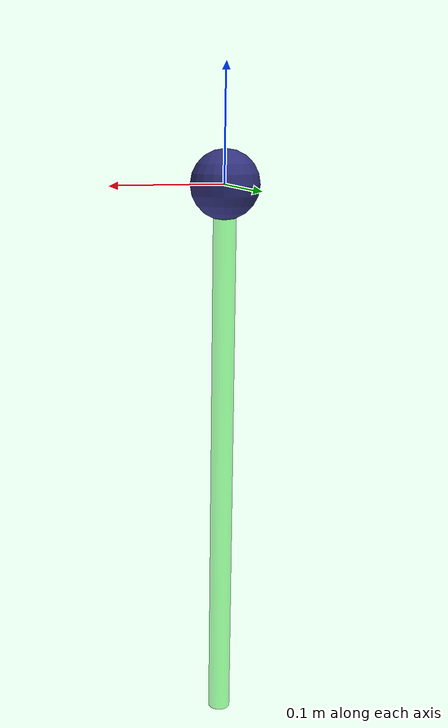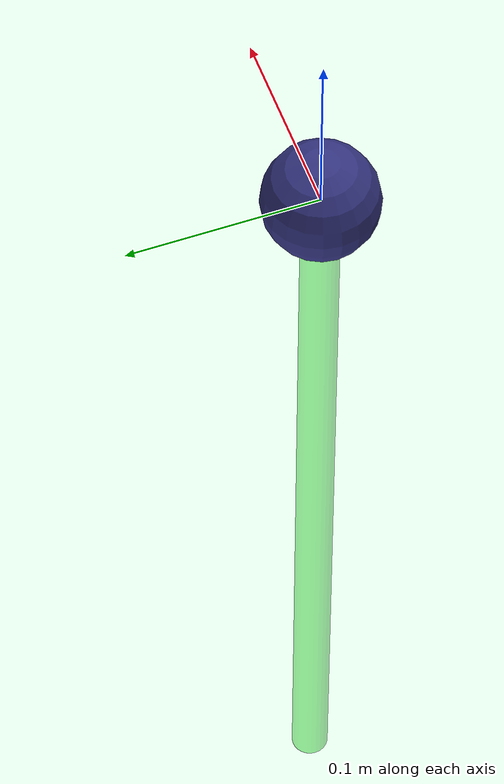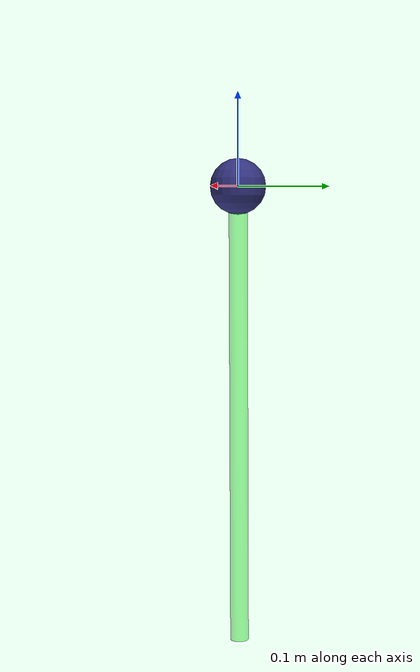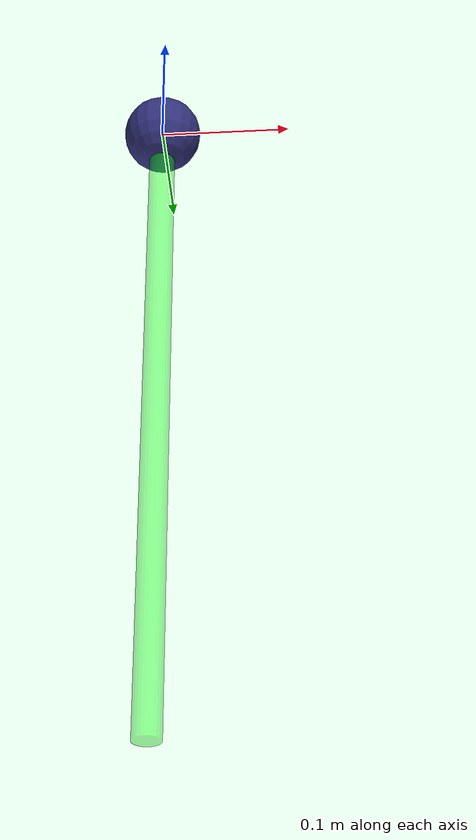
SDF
<?xml version="1.0" ?>
<sdf version="1.6">
  <model name="down_cam">
    <static>true</static>

    <link name="cam_link">
      <pose>0 0 0 0 0 0</pose>

      <inertial>
        <mass>0.01</mass>
        <inertia>
          <ixx>1e-5</ixx>
          <iyy>1e-5</iyy>
          <izz>1e-5</izz>
          <ixy>0</ixy>
          <ixz>0</ixz>
          <iyz>0</iyz>
        </inertia>
      </inertial>

      <collision name="cam_link_collision">
        <pose>0 0 0 0 0 0</pose>
        <geometry>
          <sphere>
            <radius>0.03</radius>
          </sphere>
        </geometry>
        <surface>
          <contact>
            <collide_without_contact>true</collide_without_contact>
          </contact>
        </surface>
      </collision>

      <visual name="cam_link_visual">
        <geometry>
          <sphere>
            <radius>0.03</radius>
          </sphere>
        </geometry>
        <material>
          <ambient>0.1 0.1 0.3 1</ambient>
          <diffuse>0.2 0.2 0.5 1</diffuse>
        </material>
      </visual>

      <visual name="view_ray_visual">
        <pose>0 0 -0.25 0 0 0</pose>
        <geometry>
          <cylinder>
            <radius>0.01</radius>
            <length>0.5</length>
          </cylinder>
        </geometry>
        <material>
          <ambient>0.0 1.0 0.0 0.4</ambient>
          <diffuse>0.0 1.0 0.0 0.4</diffuse>
        </material>
      </visual>

      <sensor name="nadir_camera" type="camera">
        <pose>0 0 0 0 1.57079632679 0</pose>

        <always_on>true</always_on>
        <update_rate>30</update_rate>
        <visualize>true</visualize>

        <camera>
          <horizontal_fov>1.1</horizontal_fov>
          <image>
            <width>640</width>
            <height>480</height>
            <format>R8G8B8</format>
          </image>
          <clip>
            <near>0.05</near>
            <far>100</far>
          </clip>
        </camera>
      </sensor>

      <sensor name="forward_camera" type="camera">
    <pose>0 0 -0.03 0 0 0</pose>
    <always_on>true</always_on>
    <update_rate>30</update_rate>
    <camera>
      <horizontal_fov>1.1</horizontal_fov>
      <image>
        <width>640</width>
        <height>480</height>
        <format>R8G8B8</format>
      </image>
      <clip>
        <near>0.05</near>
        <far>100</far>
      </clip>
    </camera>
    <visualize>true</visualize>
    <topic>/iris_demo/forward_cam/image_raw</topic>
  </sensor>
    </link>

    <plugin name="down_cam_follower" filename="libFollowerDownCamPlugin.so">
      <target_model>iris_demo</target_model>
      <target_link>iris::base_link</target_link>
      <offset>0 0 -0.05</offset>
    </plugin>
  </model>
</sdf>
